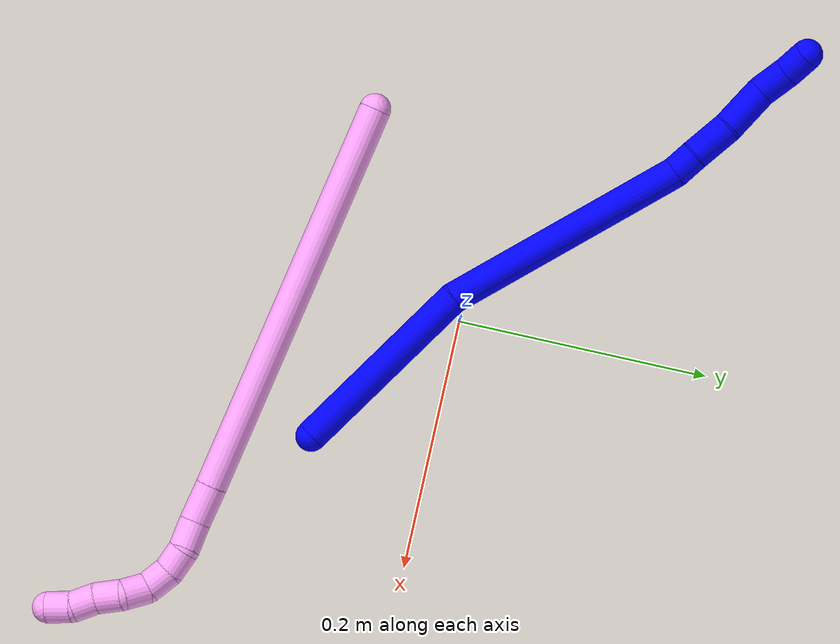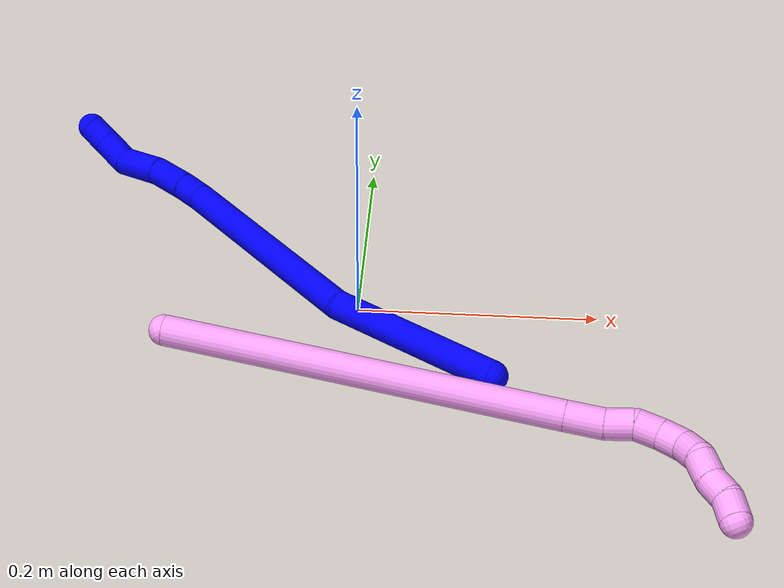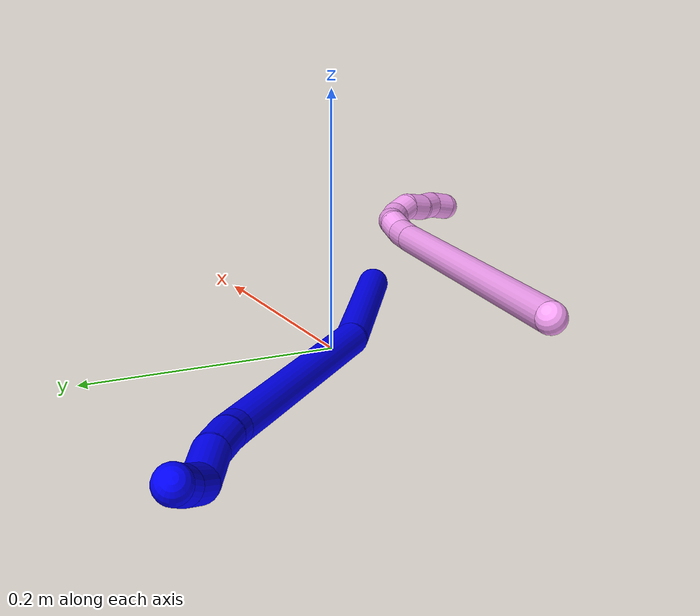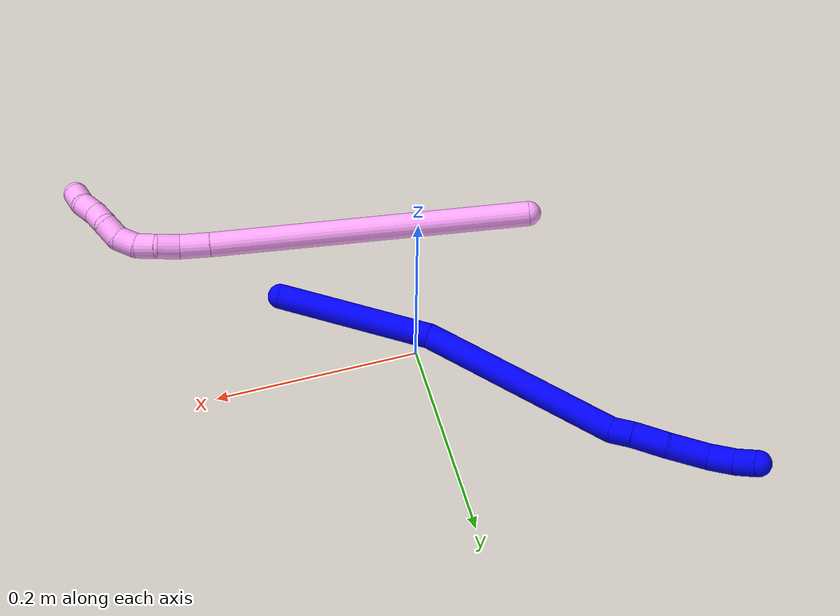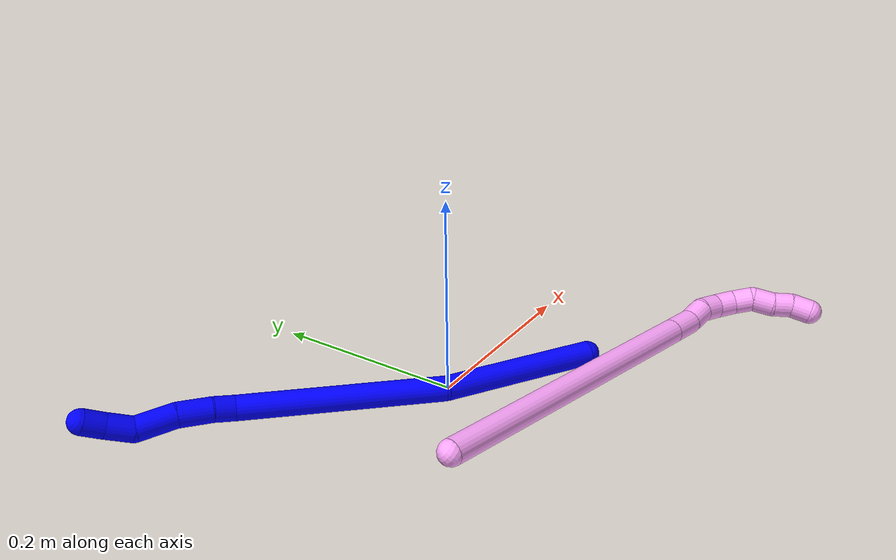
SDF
<sdf version="1.7">
 <world name="default">
  <model name="photoneo_s_sensor">
   <static>1</static>
   <pose>0 0 2 1.57079 1.57079 3.14159</pose>
   <link name="link">
    <inertial><mass>0.1</mass></inertial>
    <sensor name="sensor" type="depth">
     <update_rate>30</update_rate>
     <camera>
      <horizontal_fov>1.22</horizontal_fov>
      <image><width>1920</width><height>1200</height><format>B8G8R8</format></image>
      <clip><near>0.1</near><far>4</far></clip>
      <depth_camera><output>points</output></depth_camera>
     </camera>
     <plugin name="camera_plugin" filename="libgazebo_ros_depth_camera.so">
      <baseline>0.2</baseline>
      <alwaysOn>1</alwaysOn>
      <updateRate>0.0</updateRate>
      <cameraName>camera_ir</cameraName>
      <imageTopicName>/camera/color/image_raw</imageTopicName>
      <cameraInfoTopicName>/camera/color/camera_info</cameraInfoTopicName>
      <depthImageTopicName>/camera/depth/image_raw</depthImageTopicName>
      <depthImageCameraInfoTopicName>/camera/depth/camera_info</depthImageCameraInfoTopicName>
      <pointCloudTopicName>/camera/depth/points</pointCloudTopicName>
      <frameName>fr_optical</frameName>
      <pointCloudCutoff>0.1</pointCloudCutoff>
      <pointCloudCutoffMax>2.0</pointCloudCutoffMax>
      <distortionK1>0</distortionK1>
      <distortionK2>0</distortionK2>
      <distortionK3>0</distortionK3>
      <distortionT1>0</distortionT1>
      <distortionT2>0</distortionT2>
      <CxPrime>0</CxPrime>
      <Cx>0</Cx>
      <Cy>0</Cy>
      <focalLength>0</focalLength>
      <hackBaseline>0</hackBaseline>
     </plugin>
    </sensor>
   </link>
  </model>
  <model name="bin">
   <static>1</static>
   <link name="bottom">
    <collision name="collision-bottom">
     <pose>0 0 -0.01 0 -0 0</pose>
     <geometry><box><size>0.8 0.6 0.02</size></box></geometry>
     <surface>
      <friction><ode><mu>100</mu><mu2>100</mu2></ode></friction>
      <contact><collide_bitmask>65535</collide_bitmask></contact>
     </surface>
    </collision>
   </link>
   <link name="west_wall">
    <collision name="collision-west_wall">
     <pose>-0.41 0 0.1 0 -0 0</pose>
     <geometry><box><size>0.02 0.6 0.2</size></box></geometry>
     <surface>
      <friction><ode><mu>100</mu><mu2>100</mu2></ode></friction>
      <contact><collide_bitmask>65535</collide_bitmask></contact>
     </surface>
    </collision>
   </link>
   <link name="east_wall">
    <collision name="collision-east_wall">
     <pose>0.41 0 0.1 0 -0 0</pose>
     <geometry><box><size>0.02 0.6 0.2</size></box></geometry>
     <surface>
      <friction><ode><mu>100</mu><mu2>100</mu2></ode></friction>
      <contact><collide_bitmask>65535</collide_bitmask></contact>
     </surface>
    </collision>
   </link>
   <link name="south_wall">
    <collision name="collision-south_wall">
     <pose>0 -0.31 0.1 0 -0 0</pose>
     <geometry><box><size>0.8 0.02 0.2</size></box></geometry>
     <surface>
      <friction><ode><mu>100</mu><mu2>100</mu2></ode></friction>
      <contact><collide_bitmask>65535</collide_bitmask></contact>
     </surface>
    </collision>
   </link>
   <link name="north_wall">
    <collision name="collision-north_wall">
     <pose>0 0.31 0.1 0 -0 0</pose>
     <geometry><box><size>0.8 0.02 0.2</size></box></geometry>
     <surface>
      <friction><ode><mu>100</mu><mu2>100</mu2></ode></friction>
      <contact><collide_bitmask>65535</collide_bitmask></contact>
     </surface>
    </collision>
   </link>
  </model>
  <model name="1">
   <static>0</static>
   <link name="1">
    <collision name="collision-cylinder-e_1_1_4">
     <pose>-0.045691 0.024071 0.05866 -0.389404 -0.624421 0.127128</pose>
     <geometry><cylinder><radius>0.0125</radius><length>0.156308</length></cylinder></geometry>
     <surface>
      <friction><ode><mu>1.16</mu><mu2>1.16</mu2><slip1>0</slip1><slip2>0</slip2></ode></friction>
      <contact><ode><kp>1e+06</kp><kd>1</kd><max_vel>0</max_vel><min_depth>0.001</min_depth></ode></contact>
     </surface>
    </collision>
    <visual name="visual-cylinder-e_1_1_4">
     <pose>-0.045691 0.024071 0.05866 -0.389404 -0.624421 0.127128</pose>
     <geometry><cylinder><radius>0.0125</radius><length>0.156308</length></cylinder></geometry>
     <material><ambient>0 0 1 1</ambient></material>
    </visual>
    <collision name="collision-cylinder-e_2_4_5">
     <pose>-0.140739 0.102122 0.18673 -0.660983 -0.511495 0.17893</pose>
     <geometry><cylinder><radius>0.0125</radius><length>0.201669</length></cylinder></geometry>
     <surface>
      <friction><ode><mu>1.16</mu><mu2>1.16</mu2><slip1>0</slip1><slip2>0</slip2></ode></friction>
      <contact><ode><kp>1e+06</kp><kd>1</kd><max_vel>0</max_vel><min_depth>0.001</min_depth></ode></contact>
     </surface>
    </collision>
    <visual name="visual-cylinder-e_2_4_5">
     <pose>-0.140739 0.102122 0.18673 -0.660983 -0.511495 0.17893</pose>
     <geometry><cylinder><radius>0.0125</radius><length>0.201669</length></cylinder></geometry>
     <material><ambient>0 0 1 1</ambient></material>
    </visual>
    <collision name="collision-cylinder-e_3_5_6">
     <pose>-0.194637 0.159531 0.26491 -0.372802 -0.449391 0.086153</pose>
     <geometry><cylinder><radius>0.0125</radius><length>0.020909</length></cylinder></geometry>
     <surface>
      <friction><ode><mu>1.16</mu><mu2>1.16</mu2><slip1>0</slip1><slip2>0</slip2></ode></friction>
      <contact><ode><kp>1e+06</kp><kd>1</kd><max_vel>0</max_vel><min_depth>0.001</min_depth></ode></contact>
     </surface>
    </collision>
    <visual name="visual-cylinder-e_3_5_6">
     <pose>-0.194637 0.159531 0.26491 -0.372802 -0.449391 0.086153</pose>
     <geometry><cylinder><radius>0.0125</radius><length>0.020909</length></cylinder></geometry>
     <material><ambient>0 0 1 1</ambient></material>
    </visual>
    <collision name="collision-cylinder-e_4_6_7">
     <pose>-0.207949 0.16921 0.286517 -0.453001 -0.55083 0.130068</pose>
     <geometry><cylinder><radius>0.0125</radius><length>0.033511</length></cylinder></geometry>
     <surface>
      <friction><ode><mu>1.16</mu><mu2>1.16</mu2><slip1>0</slip1><slip2>0</slip2></ode></friction>
      <contact><ode><kp>1e+06</kp><kd>1</kd><max_vel>0</max_vel><min_depth>0.001</min_depth></ode></contact>
     </surface>
    </collision>
    <visual name="visual-cylinder-e_4_6_7">
     <pose>-0.207949 0.16921 0.286517 -0.453001 -0.55083 0.130068</pose>
     <geometry><cylinder><radius>0.0125</radius><length>0.033511</length></cylinder></geometry>
     <material><ambient>0 0 1 1</ambient></material>
    </visual>
    <collision name="collision-cylinder-e_5_7_8">
     <pose>-0.229751 0.180787 0.313221 -0.366902 -0.720155 0.13948</pose>
     <geometry><cylinder><radius>0.0125</radius><length>0.039523</length></cylinder></geometry>
     <surface>
      <friction><ode><mu>1.16</mu><mu2>1.16</mu2><slip1>0</slip1><slip2>0</slip2></ode></friction>
      <contact><ode><kp>1e+06</kp><kd>1</kd><max_vel>0</max_vel><min_depth>0.001</min_depth></ode></contact>
     </surface>
    </collision>
    <visual name="visual-cylinder-e_5_7_8">
     <pose>-0.229751 0.180787 0.313221 -0.366902 -0.720155 0.13948</pose>
     <geometry><cylinder><radius>0.0125</radius><length>0.039523</length></cylinder></geometry>
     <material><ambient>0 0 1 1</ambient></material>
    </visual>
    <collision name="collision-cylinder-e_6_8_9">
     <pose>-0.246078 0.191148 0.339198 -0.393814 -0.246081 0.04933</pose>
     <geometry><cylinder><radius>0.0125</radius><length>0.027045</length></cylinder></geometry>
     <surface>
      <friction><ode><mu>1.16</mu><mu2>1.16</mu2><slip1>0</slip1><slip2>0</slip2></ode></friction>
      <contact><ode><kp>1e+06</kp><kd>1</kd><max_vel>0</max_vel><min_depth>0.001</min_depth></ode></contact>
     </surface>
    </collision>
    <visual name="visual-cylinder-e_6_8_9">
     <pose>-0.246078 0.191148 0.339198 -0.393814 -0.246081 0.04933</pose>
     <geometry><cylinder><radius>0.0125</radius><length>0.027045</length></cylinder></geometry>
     <material><ambient>0 0 1 1</ambient></material>
    </visual>
    <collision name="collision-cylinder-e_7_9_2">
     <pose>-0.25132 0.199037 0.361242 -0.27999 -0.186273 0.026324</pose>
     <geometry><cylinder><radius>0.0125</radius><length>0.021033</length></cylinder></geometry>
     <surface>
      <friction><ode><mu>1.16</mu><mu2>1.16</mu2><slip1>0</slip1><slip2>0</slip2></ode></friction>
      <contact><ode><kp>1e+06</kp><kd>1</kd><max_vel>0</max_vel><min_depth>0.001</min_depth></ode></contact>
     </surface>
    </collision>
    <visual name="visual-cylinder-e_7_9_2">
     <pose>-0.25132 0.199037 0.361242 -0.27999 -0.186273 0.026324</pose>
     <geometry><cylinder><radius>0.0125</radius><length>0.021033</length></cylinder></geometry>
     <material><ambient>0 0 1 1</ambient></material>
    </visual>
    <collision name="collision-sphere-2">
     <pose>-0.253268 0.201893 0.371174 0 -0 0</pose>
     <geometry><sphere><radius>0.0125</radius></sphere></geometry>
     <surface>
      <friction><ode><mu>1.16</mu><mu2>1.16</mu2><slip1>0</slip1><slip2>0</slip2></ode></friction>
      <contact><ode><kp>1e+06</kp><kd>1</kd><max_vel>0</max_vel><min_depth>0.001</min_depth></ode></contact>
     </surface>
    </collision>
    <visual name="visual-sphere-2">
     <pose>-0.253268 0.201893 0.371174 0 -0 0</pose>
     <geometry><sphere><radius>0.0125</radius></sphere></geometry>
     <material><ambient>0 0 1 1</ambient></material>
    </visual>
    <collision name="collision-sphere-9">
     <pose>-0.249373 0.196181 0.35131 0 -0 0</pose>
     <geometry><sphere><radius>0.0125</radius></sphere></geometry>
     <surface>
      <friction><ode><mu>1.16</mu><mu2>1.16</mu2><slip1>0</slip1><slip2>0</slip2></ode></friction>
      <contact><ode><kp>1e+06</kp><kd>1</kd><max_vel>0</max_vel><min_depth>0.001</min_depth></ode></contact>
     </surface>
    </collision>
    <visual name="visual-sphere-9">
     <pose>-0.249373 0.196181 0.35131 0 -0 0</pose>
     <geometry><sphere><radius>0.0125</radius></sphere></geometry>
     <material><ambient>0 0 1 1</ambient></material>
    </visual>
    <collision name="collision-sphere-4">
     <pose>-0.091382 0.048143 0.117319 0 -0 0</pose>
     <geometry><sphere><radius>0.0125</radius></sphere></geometry>
     <surface>
      <friction><ode><mu>1.16</mu><mu2>1.16</mu2><slip1>0</slip1><slip2>0</slip2></ode></friction>
      <contact><ode><kp>1e+06</kp><kd>1</kd><max_vel>0</max_vel><min_depth>0.001</min_depth></ode></contact>
     </surface>
    </collision>
    <visual name="visual-sphere-4">
     <pose>-0.091382 0.048143 0.117319 0 -0 0</pose>
     <geometry><sphere><radius>0.0125</radius></sphere></geometry>
     <material><ambient>0 0 1 1</ambient></material>
    </visual>
    <collision name="collision-sphere-1">
     <geometry><sphere><radius>0.0125</radius></sphere></geometry>
     <surface>
      <friction><ode><mu>1.16</mu><mu2>1.16</mu2><slip1>0</slip1><slip2>0</slip2></ode></friction>
      <contact><ode><kp>1e+06</kp><kd>1</kd><max_vel>0</max_vel><min_depth>0.001</min_depth></ode></contact>
     </surface>
    </collision>
    <visual name="visual-sphere-1">
     <geometry><sphere><radius>0.0125</radius></sphere></geometry>
     <material><ambient>0 0 1 1</ambient></material>
    </visual>
    <collision name="collision-sphere-8">
     <pose>-0.242784 0.186116 0.327087 0 -0 0</pose>
     <geometry><sphere><radius>0.0125</radius></sphere></geometry>
     <surface>
      <friction><ode><mu>1.16</mu><mu2>1.16</mu2><slip1>0</slip1><slip2>0</slip2></ode></friction>
      <contact><ode><kp>1e+06</kp><kd>1</kd><max_vel>0</max_vel><min_depth>0.001</min_depth></ode></contact>
     </surface>
    </collision>
    <visual name="visual-sphere-8">
     <pose>-0.242784 0.186116 0.327087 0 -0 0</pose>
     <geometry><sphere><radius>0.0125</radius></sphere></geometry>
     <material><ambient>0 0 1 1</ambient></material>
    </visual>
    <collision name="collision-sphere-5">
     <pose>-0.190095 0.156101 0.25614 0 -0 0</pose>
     <geometry><sphere><radius>0.0125</radius></sphere></geometry>
     <surface>
      <friction><ode><mu>1.16</mu><mu2>1.16</mu2><slip1>0</slip1><slip2>0</slip2></ode></friction>
      <contact><ode><kp>1e+06</kp><kd>1</kd><max_vel>0</max_vel><min_depth>0.001</min_depth></ode></contact>
     </surface>
    </collision>
    <visual name="visual-sphere-5">
     <pose>-0.190095 0.156101 0.25614 0 -0 0</pose>
     <geometry><sphere><radius>0.0125</radius></sphere></geometry>
     <material><ambient>0 0 1 1</ambient></material>
    </visual>
    <collision name="collision-sphere-6">
     <pose>-0.199179 0.162961 0.27368 0 -0 0</pose>
     <geometry><sphere><radius>0.0125</radius></sphere></geometry>
     <surface>
      <friction><ode><mu>1.16</mu><mu2>1.16</mu2><slip1>0</slip1><slip2>0</slip2></ode></friction>
      <contact><ode><kp>1e+06</kp><kd>1</kd><max_vel>0</max_vel><min_depth>0.001</min_depth></ode></contact>
     </surface>
    </collision>
    <visual name="visual-sphere-6">
     <pose>-0.199179 0.162961 0.27368 0 -0 0</pose>
     <geometry><sphere><radius>0.0125</radius></sphere></geometry>
     <material><ambient>0 0 1 1</ambient></material>
    </visual>
    <collision name="collision-sphere-7">
     <pose>-0.216718 0.175458 0.299354 0 -0 0</pose>
     <geometry><sphere><radius>0.0125</radius></sphere></geometry>
     <surface>
      <friction><ode><mu>1.16</mu><mu2>1.16</mu2><slip1>0</slip1><slip2>0</slip2></ode></friction>
      <contact><ode><kp>1e+06</kp><kd>1</kd><max_vel>0</max_vel><min_depth>0.001</min_depth></ode></contact>
     </surface>
    </collision>
    <visual name="visual-sphere-7">
     <pose>-0.216718 0.175458 0.299354 0 -0 0</pose>
     <geometry><sphere><radius>0.0125</radius></sphere></geometry>
     <material><ambient>0 0 1 1</ambient></material>
    </visual>
    <inertial>
     <pose>-0.13517 0.09973 0.182237 0 -0 0</pose>
     <mass>0.5</mass>
     <inertia><ixx>0.000991</ixx><ixy>0</ixy><ixz>0</ixz><iyy>0.001055</iyy><iyz>0</iyz><izz>9e-05</izz></inertia>
    </inertial>
   </link>
   <pose>0.114183 -0.094349 0.012635 -0.179534 -0.871286 -0.127304</pose>
  </model>
  <model name="4">
   <static>0</static>
   <link name="4">
    <collision name="collision-cylinder-e_1_1_4">
     <pose>0.130293 -0.018476 0.092381 0.19739 0.944761 0.101102</pose>
     <geometry><cylinder><radius>0.0125</radius><length>0.32157</length></cylinder></geometry>
     <surface>
      <friction><ode><mu>1.16</mu><mu2>1.16</mu2><slip1>0</slip1><slip2>0</slip2></ode></friction>
      <contact><ode><kp>1e+06</kp><kd>1</kd><max_vel>0</max_vel><min_depth>0.001</min_depth></ode></contact>
     </surface>
    </collision>
    <visual name="visual-cylinder-e_1_1_4">
     <pose>0.130293 -0.018476 0.092381 0.19739 0.944761 0.101102</pose>
     <geometry><cylinder><radius>0.0125</radius><length>0.32157</length></cylinder></geometry>
     <material><ambient>1 0.65098 0.996078 1</ambient></material>
    </visual>
    <collision name="collision-cylinder-e_2_4_5">
     <pose>0.273385 -0.038308 0.193638 0.151665 0.958929 0.078966</pose>
     <geometry><cylinder><radius>0.0125</radius><length>0.031269</length></cylinder></geometry>
     <surface>
      <friction><ode><mu>1.16</mu><mu2>1.16</mu2><slip1>0</slip1><slip2>0</slip2></ode></friction>
      <contact><ode><kp>1e+06</kp><kd>1</kd><max_vel>0</max_vel><min_depth>0.001</min_depth></ode></contact>
     </surface>
    </collision>
    <visual name="visual-cylinder-e_2_4_5">
     <pose>0.273385 -0.038308 0.193638 0.151665 0.958929 0.078966</pose>
     <geometry><cylinder><radius>0.0125</radius><length>0.031269</length></cylinder></geometry>
     <material><ambient>1 0.65098 0.996078 1</ambient></material>
    </visual>
    <collision name="collision-cylinder-e_3_5_6">
     <pose>0.29686 -0.039776 0.20716 0.023966 1.16041 0.015709</pose>
     <geometry><cylinder><radius>0.0125</radius><length>0.023289</length></cylinder></geometry>
     <surface>
      <friction><ode><mu>1.16</mu><mu2>1.16</mu2><slip1>0</slip1><slip2>0</slip2></ode></friction>
      <contact><ode><kp>1e+06</kp><kd>1</kd><max_vel>0</max_vel><min_depth>0.001</min_depth></ode></contact>
     </surface>
    </collision>
    <visual name="visual-cylinder-e_3_5_6">
     <pose>0.29686 -0.039776 0.20716 0.023966 1.16041 0.015709</pose>
     <geometry><cylinder><radius>0.0125</radius><length>0.023289</length></cylinder></geometry>
     <material><ambient>1 0.65098 0.996078 1</ambient></material>
    </visual>
    <collision name="collision-cylinder-e_4_6_7">
     <pose>0.314925 -0.039743 0.218987 -0.020159 0.799367 -0.008516</pose>
     <geometry><cylinder><radius>0.0125</radius><length>0.020607</length></cylinder></geometry>
     <surface>
      <friction><ode><mu>1.16</mu><mu2>1.16</mu2><slip1>0</slip1><slip2>0</slip2></ode></friction>
      <contact><ode><kp>1e+06</kp><kd>1</kd><max_vel>0</max_vel><min_depth>0.001</min_depth></ode></contact>
     </surface>
    </collision>
    <visual name="visual-cylinder-e_4_6_7">
     <pose>0.314925 -0.039743 0.218987 -0.020159 0.799367 -0.008516</pose>
     <geometry><cylinder><radius>0.0125</radius><length>0.020607</length></cylinder></geometry>
     <material><ambient>1 0.65098 0.996078 1</ambient></material>
    </visual>
    <collision name="collision-cylinder-e_5_7_8">
     <pose>0.329091 -0.035974 0.233419 -0.463457 0.696488 -0.170914</pose>
     <geometry><cylinder><radius>0.0125</radius><length>0.021133</length></cylinder></geometry>
     <surface>
      <friction><ode><mu>1.16</mu><mu2>1.16</mu2><slip1>0</slip1><slip2>0</slip2></ode></friction>
      <contact><ode><kp>1e+06</kp><kd>1</kd><max_vel>0</max_vel><min_depth>0.001</min_depth></ode></contact>
     </surface>
    </collision>
    <visual name="visual-cylinder-e_5_7_8">
     <pose>0.329091 -0.035974 0.233419 -0.463457 0.696488 -0.170914</pose>
     <geometry><cylinder><radius>0.0125</radius><length>0.021133</length></cylinder></geometry>
     <material><ambient>1 0.65098 0.996078 1</ambient></material>
    </visual>
    <collision name="collision-cylinder-e_6_8_9">
     <pose>0.340225 -0.025254 0.246518 -0.881469 0.442338 -0.211321</pose>
     <geometry><cylinder><radius>0.0125</radius><length>0.02035</length></cylinder></geometry>
     <surface>
      <friction><ode><mu>1.16</mu><mu2>1.16</mu2><slip1>0</slip1><slip2>0</slip2></ode></friction>
      <contact><ode><kp>1e+06</kp><kd>1</kd><max_vel>0</max_vel><min_depth>0.001</min_depth></ode></contact>
     </surface>
    </collision>
    <visual name="visual-cylinder-e_6_8_9">
     <pose>0.340225 -0.025254 0.246518 -0.881469 0.442338 -0.211321</pose>
     <geometry><cylinder><radius>0.0125</radius><length>0.02035</length></cylinder></geometry>
     <material><ambient>1 0.65098 0.996078 1</ambient></material>
    </visual>
    <collision name="collision-cylinder-e_7_9_10">
     <pose>0.345774 -0.012649 0.261457 -0.544821 0.111764 -0.031252</pose>
     <geometry><cylinder><radius>0.0125</radius><length>0.021392</length></cylinder></geometry>
     <surface>
      <friction><ode><mu>1.16</mu><mu2>1.16</mu2><slip1>0</slip1><slip2>0</slip2></ode></friction>
      <contact><ode><kp>1e+06</kp><kd>1</kd><max_vel>0</max_vel><min_depth>0.001</min_depth></ode></contact>
     </surface>
    </collision>
    <visual name="visual-cylinder-e_7_9_10">
     <pose>0.345774 -0.012649 0.261457 -0.544821 0.111764 -0.031252</pose>
     <geometry><cylinder><radius>0.0125</radius><length>0.021392</length></cylinder></geometry>
     <material><ambient>1 0.65098 0.996078 1</ambient></material>
    </visual>
    <collision name="collision-cylinder-e_8_10_11">
     <pose>0.350552 -0.002196 0.27853 -0.554637 0.364796 -0.104911</pose>
     <geometry><cylinder><radius>0.0125</radius><length>0.020102</length></cylinder></geometry>
     <surface>
      <friction><ode><mu>1.16</mu><mu2>1.16</mu2><slip1>0</slip1><slip2>0</slip2></ode></friction>
      <contact><ode><kp>1e+06</kp><kd>1</kd><max_vel>0</max_vel><min_depth>0.001</min_depth></ode></contact>
     </surface>
    </collision>
    <visual name="visual-cylinder-e_8_10_11">
     <pose>0.350552 -0.002196 0.27853 -0.554637 0.364796 -0.104911</pose>
     <geometry><cylinder><radius>0.0125</radius><length>0.020102</length></cylinder></geometry>
     <material><ambient>1 0.65098 0.996078 1</ambient></material>
    </visual>
    <collision name="collision-cylinder-e_9_11_2">
     <pose>0.354247 0.008253 0.295031 -0.573619 0.01078 -0.003179</pose>
     <geometry><cylinder><radius>0.0125</radius><length>0.020286</length></cylinder></geometry>
     <surface>
      <friction><ode><mu>1.16</mu><mu2>1.16</mu2><slip1>0</slip1><slip2>0</slip2></ode></friction>
      <contact><ode><kp>1e+06</kp><kd>1</kd><max_vel>0</max_vel><min_depth>0.001</min_depth></ode></contact>
     </surface>
    </collision>
    <visual name="visual-cylinder-e_9_11_2">
     <pose>0.354247 0.008253 0.295031 -0.573619 0.01078 -0.003179</pose>
     <geometry><cylinder><radius>0.0125</radius><length>0.020286</length></cylinder></geometry>
     <material><ambient>1 0.65098 0.996078 1</ambient></material>
    </visual>
    <collision name="collision-sphere-2">
     <pose>0.354357 0.013757 0.30355 0 -0 0</pose>
     <geometry><sphere><radius>0.0125</radius></sphere></geometry>
     <surface>
      <friction><ode><mu>1.16</mu><mu2>1.16</mu2><slip1>0</slip1><slip2>0</slip2></ode></friction>
      <contact><ode><kp>1e+06</kp><kd>1</kd><max_vel>0</max_vel><min_depth>0.001</min_depth></ode></contact>
     </surface>
    </collision>
    <visual name="visual-sphere-2">
     <pose>0.354357 0.013757 0.30355 0 -0 0</pose>
     <geometry><sphere><radius>0.0125</radius></sphere></geometry>
     <material><ambient>1 0.65098 0.996078 1</ambient></material>
    </visual>
    <collision name="collision-sphere-11">
     <pose>0.354138 0.002749 0.286512 0 -0 0</pose>
     <geometry><sphere><radius>0.0125</radius></sphere></geometry>
     <surface>
      <friction><ode><mu>1.16</mu><mu2>1.16</mu2><slip1>0</slip1><slip2>0</slip2></ode></friction>
      <contact><ode><kp>1e+06</kp><kd>1</kd><max_vel>0</max_vel><min_depth>0.001</min_depth></ode></contact>
     </surface>
    </collision>
    <visual name="visual-sphere-11">
     <pose>0.354138 0.002749 0.286512 0 -0 0</pose>
     <geometry><sphere><radius>0.0125</radius></sphere></geometry>
     <material><ambient>1 0.65098 0.996078 1</ambient></material>
    </visual>
    <collision name="collision-sphere-10">
     <pose>0.346966 -0.007141 0.270548 0 -0 0</pose>
     <geometry><sphere><radius>0.0125</radius></sphere></geometry>
     <surface>
      <friction><ode><mu>1.16</mu><mu2>1.16</mu2><slip1>0</slip1><slip2>0</slip2></ode></friction>
      <contact><ode><kp>1e+06</kp><kd>1</kd><max_vel>0</max_vel><min_depth>0.001</min_depth></ode></contact>
     </surface>
    </collision>
    <visual name="visual-sphere-10">
     <pose>0.346966 -0.007141 0.270548 0 -0 0</pose>
     <geometry><sphere><radius>0.0125</radius></sphere></geometry>
     <material><ambient>1 0.65098 0.996078 1</ambient></material>
    </visual>
    <collision name="collision-sphere-9">
     <pose>0.344581 -0.018158 0.252367 0 -0 0</pose>
     <geometry><sphere><radius>0.0125</radius></sphere></geometry>
     <surface>
      <friction><ode><mu>1.16</mu><mu2>1.16</mu2><slip1>0</slip1><slip2>0</slip2></ode></friction>
      <contact><ode><kp>1e+06</kp><kd>1</kd><max_vel>0</max_vel><min_depth>0.001</min_depth></ode></contact>
     </surface>
    </collision>
    <visual name="visual-sphere-9">
     <pose>0.344581 -0.018158 0.252367 0 -0 0</pose>
     <geometry><sphere><radius>0.0125</radius></sphere></geometry>
     <material><ambient>1 0.65098 0.996078 1</ambient></material>
    </visual>
    <collision name="collision-sphere-4">
     <pose>0.260587 -0.036951 0.184761 0 -0 0</pose>
     <geometry><sphere><radius>0.0125</radius></sphere></geometry>
     <surface>
      <friction><ode><mu>1.16</mu><mu2>1.16</mu2><slip1>0</slip1><slip2>0</slip2></ode></friction>
      <contact><ode><kp>1e+06</kp><kd>1</kd><max_vel>0</max_vel><min_depth>0.001</min_depth></ode></contact>
     </surface>
    </collision>
    <visual name="visual-sphere-4">
     <pose>0.260587 -0.036951 0.184761 0 -0 0</pose>
     <geometry><sphere><radius>0.0125</radius></sphere></geometry>
     <material><ambient>1 0.65098 0.996078 1</ambient></material>
    </visual>
    <collision name="collision-sphere-1">
     <geometry><sphere><radius>0.0125</radius></sphere></geometry>
     <surface>
      <friction><ode><mu>1.16</mu><mu2>1.16</mu2><slip1>0</slip1><slip2>0</slip2></ode></friction>
      <contact><ode><kp>1e+06</kp><kd>1</kd><max_vel>0</max_vel><min_depth>0.001</min_depth></ode></contact>
     </surface>
    </collision>
    <visual name="visual-sphere-1">
     <geometry><sphere><radius>0.0125</radius></sphere></geometry>
     <material><ambient>1 0.65098 0.996078 1</ambient></material>
    </visual>
    <collision name="collision-sphere-8">
     <pose>0.33587 -0.032351 0.24067 0 -0 0</pose>
     <geometry><sphere><radius>0.0125</radius></sphere></geometry>
     <surface>
      <friction><ode><mu>1.16</mu><mu2>1.16</mu2><slip1>0</slip1><slip2>0</slip2></ode></friction>
      <contact><ode><kp>1e+06</kp><kd>1</kd><max_vel>0</max_vel><min_depth>0.001</min_depth></ode></contact>
     </surface>
    </collision>
    <visual name="visual-sphere-8">
     <pose>0.33587 -0.032351 0.24067 0 -0 0</pose>
     <geometry><sphere><radius>0.0125</radius></sphere></geometry>
     <material><ambient>1 0.65098 0.996078 1</ambient></material>
    </visual>
    <collision name="collision-sphere-5">
     <pose>0.286183 -0.039665 0.202516 0 -0 0</pose>
     <geometry><sphere><radius>0.0125</radius></sphere></geometry>
     <surface>
      <friction><ode><mu>1.16</mu><mu2>1.16</mu2><slip1>0</slip1><slip2>0</slip2></ode></friction>
      <contact><ode><kp>1e+06</kp><kd>1</kd><max_vel>0</max_vel><min_depth>0.001</min_depth></ode></contact>
     </surface>
    </collision>
    <visual name="visual-sphere-5">
     <pose>0.286183 -0.039665 0.202516 0 -0 0</pose>
     <geometry><sphere><radius>0.0125</radius></sphere></geometry>
     <material><ambient>1 0.65098 0.996078 1</ambient></material>
    </visual>
    <collision name="collision-sphere-6">
     <pose>0.307538 -0.039887 0.211805 0 -0 0</pose>
     <geometry><sphere><radius>0.0125</radius></sphere></geometry>
     <surface>
      <friction><ode><mu>1.16</mu><mu2>1.16</mu2><slip1>0</slip1><slip2>0</slip2></ode></friction>
      <contact><ode><kp>1e+06</kp><kd>1</kd><max_vel>0</max_vel><min_depth>0.001</min_depth></ode></contact>
     </surface>
    </collision>
    <visual name="visual-sphere-6">
     <pose>0.307538 -0.039887 0.211805 0 -0 0</pose>
     <geometry><sphere><radius>0.0125</radius></sphere></geometry>
     <material><ambient>1 0.65098 0.996078 1</ambient></material>
    </visual>
    <collision name="collision-sphere-7">
     <pose>0.322312 -0.039598 0.226168 0 -0 0</pose>
     <geometry><sphere><radius>0.0125</radius></sphere></geometry>
     <surface>
      <friction><ode><mu>1.16</mu><mu2>1.16</mu2><slip1>0</slip1><slip2>0</slip2></ode></friction>
      <contact><ode><kp>1e+06</kp><kd>1</kd><max_vel>0</max_vel><min_depth>0.001</min_depth></ode></contact>
     </surface>
    </collision>
    <visual name="visual-sphere-7">
     <pose>0.322312 -0.039598 0.226168 0 -0 0</pose>
     <geometry><sphere><radius>0.0125</radius></sphere></geometry>
     <material><ambient>1 0.65098 0.996078 1</ambient></material>
    </visual>
    <inertial>
     <pose>0.198718 -0.020612 0.144452 0 -0 0</pose>
     <mass>0.5</mass>
     <inertia>
      <ixx>0.001826</ixx>
      <ixy>0</ixy>
      <ixz>0</ixz>
      <iyy>0.002939</iyy>
      <iyz>0</iyz>
      <izz>-0.001924</izz>
     </inertia>
    </inertial>
   </link>
   <pose>-0.145988 -0.100536 0.05081 2.40496 -0.495288 0.114722</pose>
  </model>
 </world>
</sdf>
